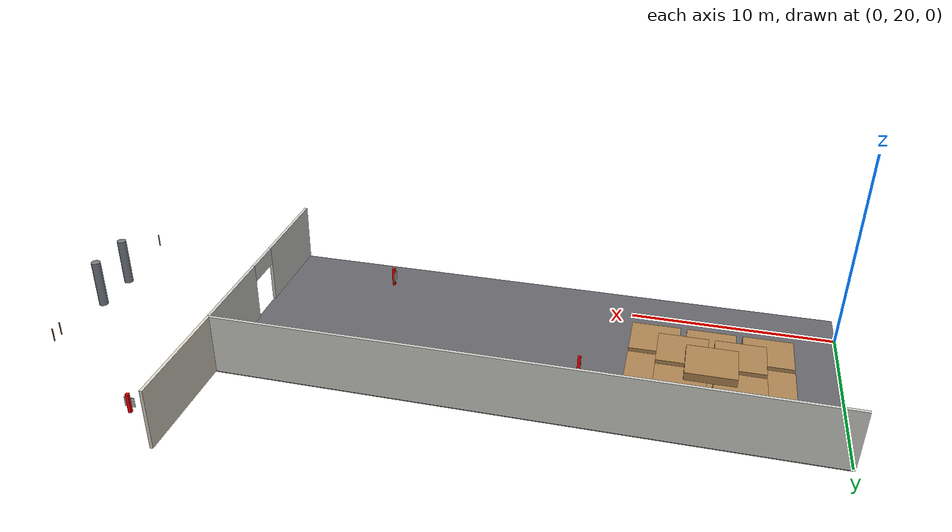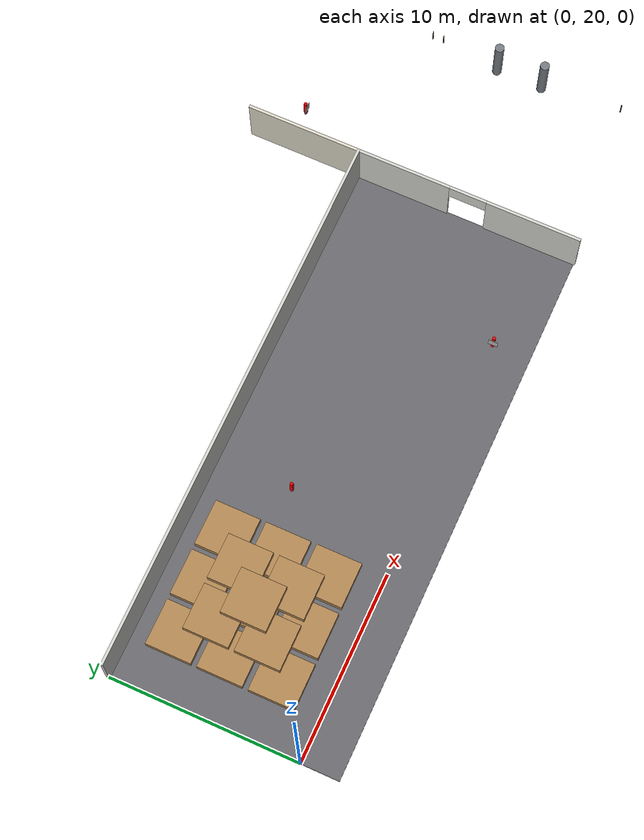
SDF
<sdf version="1.6">
 <world name="warehouse_world">
  <model name="wall_warehouse_north">
   <static>true</static>
   <pose>14.4000 30.0000 1.5000 0.0000 0.0000 0.0000</pose>
   <link name="link">
    <inertial>
     <mass>50.0</mass>
     <inertia><ixx>0.1</ixx><ixy>0</ixy><ixz>0</ixz><iyy>0.1</iyy><iyz>0</iyz><izz>0.1</izz></inertia>
    </inertial>
    <collision name="collision">
     <geometry><box><size>28.9500 0.1500 3.0000</size></box></geometry>
     <surface><friction><ode><mu>0.8</mu><mu2>0.8</mu2></ode></friction></surface>
    </collision>
    <visual name="visual">
     <geometry><box><size>28.9500 0.1500 3.0000</size></box></geometry>
     <material>
      <ambient>0.820 0.820 0.800 1.00</ambient>
      <diffuse>0.820 0.820 0.800 1.00</diffuse>
      <specular>0.15 0.15 0.15 1</specular>
      <emissive>0 0 0 1</emissive>
     </material>
    </visual>
   </link>
  </model>
  <model name="wall_office_west_upper">
   <static>true</static>
   <pose>28.8000 33.0000 1.5000 0.0000 0.0000 0.0000</pose>
   <link name="link">
    <inertial>
     <mass>50.0</mass>
     <inertia><ixx>0.1</ixx><ixy>0</ixy><ixz>0</ixz><iyy>0.1</iyy><iyz>0</iyz><izz>0.1</izz></inertia>
    </inertial>
    <collision name="collision">
     <geometry><box><size>0.1500 6.1500 3.0000</size></box></geometry>
     <surface><friction><ode><mu>0.8</mu><mu2>0.8</mu2></ode></friction></surface>
    </collision>
    <visual name="visual">
     <geometry><box><size>0.1500 6.1500 3.0000</size></box></geometry>
     <material>
      <ambient>0.860 0.840 0.780 1.00</ambient>
      <diffuse>0.860 0.840 0.780 1.00</diffuse>
      <specular>0.15 0.15 0.15 1</specular>
      <emissive>0 0 0 1</emissive>
     </material>
    </visual>
   </link>
  </model>
  <model name="door_warehouse_office_jamb_a">
   <static>true</static>
   <pose>28.8000 20.4625 1.5000 0.0000 0.0000 0.0000</pose>
   <link name="link">
    <inertial>
     <mass>50.0</mass>
     <inertia><ixx>0.1</ixx><ixy>0</ixy><ixz>0</ixz><iyy>0.1</iyy><iyz>0</iyz><izz>0.1</izz></inertia>
    </inertial>
    <collision name="collision">
     <geometry><box><size>0.1500 5.0750 3.0000</size></box></geometry>
     <surface><friction><ode><mu>0.8</mu><mu2>0.8</mu2></ode></friction></surface>
    </collision>
    <visual name="visual">
     <geometry><box><size>0.1500 5.0750 3.0000</size></box></geometry>
     <material>
      <ambient>0.820 0.820 0.800 1.00</ambient>
      <diffuse>0.820 0.820 0.800 1.00</diffuse>
      <specular>0.15 0.15 0.15 1</specular>
      <emissive>0 0 0 1</emissive>
     </material>
    </visual>
   </link>
  </model>
  <model name="door_warehouse_office_jamb_b">
   <static>true</static>
   <pose>28.8000 27.5375 1.5000 0.0000 0.0000 0.0000</pose>
   <link name="link">
    <inertial>
     <mass>50.0</mass>
     <inertia><ixx>0.1</ixx><ixy>0</ixy><ixz>0</ixz><iyy>0.1</iyy><iyz>0</iyz><izz>0.1</izz></inertia>
    </inertial>
    <collision name="collision">
     <geometry><box><size>0.1500 5.0750 3.0000</size></box></geometry>
     <surface><friction><ode><mu>0.8</mu><mu2>0.8</mu2></ode></friction></surface>
    </collision>
    <visual name="visual">
     <geometry><box><size>0.1500 5.0750 3.0000</size></box></geometry>
     <material>
      <ambient>0.820 0.820 0.800 1.00</ambient>
      <diffuse>0.820 0.820 0.800 1.00</diffuse>
      <specular>0.15 0.15 0.15 1</specular>
      <emissive>0 0 0 1</emissive>
     </material>
    </visual>
   </link>
  </model>
  <model name="door_warehouse_office_header">
   <static>true</static>
   <pose>28.8000 24.0000 2.5500 0.0000 0.0000 0.0000</pose>
   <link name="link">
    <inertial>
     <mass>10.0</mass>
     <inertia><ixx>0.1</ixx><ixy>0</ixy><ixz>0</ixz><iyy>0.1</iyy><iyz>0</iyz><izz>0.1</izz></inertia>
    </inertial>
    <collision name="collision">
     <geometry><box><size>0.1500 2.0000 0.9000</size></box></geometry>
     <surface><friction><ode><mu>0.8</mu><mu2>0.8</mu2></ode></friction></surface>
    </collision>
    <visual name="visual">
     <geometry><box><size>0.1500 2.0000 0.9000</size></box></geometry>
     <material>
      <ambient>0.820 0.820 0.800 1.00</ambient>
      <diffuse>0.820 0.820 0.800 1.00</diffuse>
      <specular>0.15 0.15 0.15 1</specular>
      <emissive>0 0 0 1</emissive>
     </material>
    </visual>
   </link>
  </model>
  <model name="floor_warehouse_upper">
   <static>true</static>
   <pose>14.4000 24.0000 -0.0500 0.0000 0.0000 0.0000</pose>
   <link name="link">
    <inertial>
     <mass>100.0</mass>
     <inertia><ixx>0.1</ixx><ixy>0</ixy><ixz>0</ixz><iyy>0.1</iyy><iyz>0</iyz><izz>0.1</izz></inertia>
    </inertial>
    <collision name="collision">
     <geometry><box><size>28.8000 12.0000 0.1000</size></box></geometry>
     <surface><friction><ode><mu>0.8</mu><mu2>0.8</mu2></ode></friction></surface>
    </collision>
    <visual name="visual">
     <geometry><box><size>28.8000 12.0000 0.1000</size></box></geometry>
     <material>
      <ambient>0.400 0.400 0.420 1.00</ambient>
      <diffuse>0.400 0.400 0.420 1.00</diffuse>
      <specular>0.15 0.15 0.15 1</specular>
      <emissive>0 0 0 1</emissive>
     </material>
    </visual>
   </link>
  </model>
  <model name="loading_area_pad">
   <static>true</static>
   <pose>6.0000 25.2000 0.0010 0.0000 0.0000 0.0000</pose>
   <link name="link">
    <inertial>
     <mass>5.0</mass>
     <inertia><ixx>0.1</ixx><ixy>0</ixy><ixz>0</ixz><iyy>0.1</iyy><iyz>0</iyz><izz>0.1</izz></inertia>
    </inertial>
    <collision name="collision">
     <geometry><plane><normal>0 0 1</normal><size>9.6000 9.6000</size></plane></geometry>
     <surface><friction><ode><mu>0.8</mu><mu2>0.8</mu2></ode></friction></surface>
    </collision>
    <visual name="visual">
     <geometry><plane><normal>0 0 1</normal><size>9.6000 9.6000</size></plane></geometry>
     <material>
      <ambient>0.850 0.700 0.100 1.00</ambient>
      <diffuse>0.850 0.700 0.100 1.00</diffuse>
      <specular>0.15 0.15 0.15 1</specular>
      <emissive>0 0 0 1</emissive>
     </material>
    </visual>
   </link>
  </model>
  <model name="loading_box_base_1">
   <static>true</static>
   <pose>3.3000 22.5000 0.2000 0.0000 0.0000 0.0000</pose>
   <link name="link">
    <inertial>
     <mass>8.0</mass>
     <inertia><ixx>0.1</ixx><ixy>0</ixy><ixz>0</ixz><iyy>0.1</iyy><iyz>0</iyz><izz>0.1</izz></inertia>
    </inertial>
    <collision name="collision">
     <geometry><box><size>2.4000 2.4000 0.4000</size></box></geometry>
     <surface><friction><ode><mu>0.8</mu><mu2>0.8</mu2></ode></friction></surface>
    </collision>
    <visual name="visual">
     <geometry><box><size>2.4000 2.4000 0.4000</size></box></geometry>
     <material>
      <ambient>0.680 0.520 0.320 1.00</ambient>
      <diffuse>0.680 0.520 0.320 1.00</diffuse>
      <specular>0.15 0.15 0.15 1</specular>
      <emissive>0 0 0 1</emissive>
     </material>
    </visual>
   </link>
  </model>
  <model name="loading_box_base_2">
   <static>true</static>
   <pose>6.0000 22.5000 0.2000 0.0000 0.0000 0.0000</pose>
   <link name="link">
    <inertial>
     <mass>8.0</mass>
     <inertia><ixx>0.1</ixx><ixy>0</ixy><ixz>0</ixz><iyy>0.1</iyy><iyz>0</iyz><izz>0.1</izz></inertia>
    </inertial>
    <collision name="collision">
     <geometry><box><size>2.4000 2.4000 0.4000</size></box></geometry>
     <surface><friction><ode><mu>0.8</mu><mu2>0.8</mu2></ode></friction></surface>
    </collision>
    <visual name="visual">
     <geometry><box><size>2.4000 2.4000 0.4000</size></box></geometry>
     <material>
      <ambient>0.680 0.520 0.320 1.00</ambient>
      <diffuse>0.680 0.520 0.320 1.00</diffuse>
      <specular>0.15 0.15 0.15 1</specular>
      <emissive>0 0 0 1</emissive>
     </material>
    </visual>
   </link>
  </model>
  <model name="loading_box_base_3">
   <static>true</static>
   <pose>8.7000 22.5000 0.2000 0.0000 0.0000 0.0000</pose>
   <link name="link">
    <inertial>
     <mass>8.0</mass>
     <inertia><ixx>0.1</ixx><ixy>0</ixy><ixz>0</ixz><iyy>0.1</iyy><iyz>0</iyz><izz>0.1</izz></inertia>
    </inertial>
    <collision name="collision">
     <geometry><box><size>2.4000 2.4000 0.4000</size></box></geometry>
     <surface><friction><ode><mu>0.8</mu><mu2>0.8</mu2></ode></friction></surface>
    </collision>
    <visual name="visual">
     <geometry><box><size>2.4000 2.4000 0.4000</size></box></geometry>
     <material>
      <ambient>0.680 0.520 0.320 1.00</ambient>
      <diffuse>0.680 0.520 0.320 1.00</diffuse>
      <specular>0.15 0.15 0.15 1</specular>
      <emissive>0 0 0 1</emissive>
     </material>
    </visual>
   </link>
  </model>
  <model name="loading_box_base_4">
   <static>true</static>
   <pose>3.3000 25.2000 0.2000 0.0000 0.0000 0.0000</pose>
   <link name="link">
    <inertial>
     <mass>8.0</mass>
     <inertia><ixx>0.1</ixx><ixy>0</ixy><ixz>0</ixz><iyy>0.1</iyy><iyz>0</iyz><izz>0.1</izz></inertia>
    </inertial>
    <collision name="collision">
     <geometry><box><size>2.4000 2.4000 0.4000</size></box></geometry>
     <surface><friction><ode><mu>0.8</mu><mu2>0.8</mu2></ode></friction></surface>
    </collision>
    <visual name="visual">
     <geometry><box><size>2.4000 2.4000 0.4000</size></box></geometry>
     <material>
      <ambient>0.680 0.520 0.320 1.00</ambient>
      <diffuse>0.680 0.520 0.320 1.00</diffuse>
      <specular>0.15 0.15 0.15 1</specular>
      <emissive>0 0 0 1</emissive>
     </material>
    </visual>
   </link>
  </model>
  <model name="loading_box_base_5">
   <static>true</static>
   <pose>6.0000 25.2000 0.2000 0.0000 0.0000 0.0000</pose>
   <link name="link">
    <inertial>
     <mass>8.0</mass>
     <inertia><ixx>0.1</ixx><ixy>0</ixy><ixz>0</ixz><iyy>0.1</iyy><iyz>0</iyz><izz>0.1</izz></inertia>
    </inertial>
    <collision name="collision">
     <geometry><box><size>2.4000 2.4000 0.4000</size></box></geometry>
     <surface><friction><ode><mu>0.8</mu><mu2>0.8</mu2></ode></friction></surface>
    </collision>
    <visual name="visual">
     <geometry><box><size>2.4000 2.4000 0.4000</size></box></geometry>
     <material>
      <ambient>0.680 0.520 0.320 1.00</ambient>
      <diffuse>0.680 0.520 0.320 1.00</diffuse>
      <specular>0.15 0.15 0.15 1</specular>
      <emissive>0 0 0 1</emissive>
     </material>
    </visual>
   </link>
  </model>
  <model name="loading_box_base_6">
   <static>true</static>
   <pose>8.7000 25.2000 0.2000 0.0000 0.0000 0.0000</pose>
   <link name="link">
    <inertial>
     <mass>8.0</mass>
     <inertia><ixx>0.1</ixx><ixy>0</ixy><ixz>0</ixz><iyy>0.1</iyy><iyz>0</iyz><izz>0.1</izz></inertia>
    </inertial>
    <collision name="collision">
     <geometry><box><size>2.4000 2.4000 0.4000</size></box></geometry>
     <surface><friction><ode><mu>0.8</mu><mu2>0.8</mu2></ode></friction></surface>
    </collision>
    <visual name="visual">
     <geometry><box><size>2.4000 2.4000 0.4000</size></box></geometry>
     <material>
      <ambient>0.680 0.520 0.320 1.00</ambient>
      <diffuse>0.680 0.520 0.320 1.00</diffuse>
      <specular>0.15 0.15 0.15 1</specular>
      <emissive>0 0 0 1</emissive>
     </material>
    </visual>
   </link>
  </model>
  <model name="loading_box_base_7">
   <static>true</static>
   <pose>3.3000 27.9000 0.2000 0.0000 0.0000 0.0000</pose>
   <link name="link">
    <inertial>
     <mass>8.0</mass>
     <inertia><ixx>0.1</ixx><ixy>0</ixy><ixz>0</ixz><iyy>0.1</iyy><iyz>0</iyz><izz>0.1</izz></inertia>
    </inertial>
    <collision name="collision">
     <geometry><box><size>2.4000 2.4000 0.4000</size></box></geometry>
     <surface><friction><ode><mu>0.8</mu><mu2>0.8</mu2></ode></friction></surface>
    </collision>
    <visual name="visual">
     <geometry><box><size>2.4000 2.4000 0.4000</size></box></geometry>
     <material>
      <ambient>0.680 0.520 0.320 1.00</ambient>
      <diffuse>0.680 0.520 0.320 1.00</diffuse>
      <specular>0.15 0.15 0.15 1</specular>
      <emissive>0 0 0 1</emissive>
     </material>
    </visual>
   </link>
  </model>
  <model name="loading_box_base_8">
   <static>true</static>
   <pose>6.0000 27.9000 0.2000 0.0000 0.0000 0.0000</pose>
   <link name="link">
    <inertial>
     <mass>8.0</mass>
     <inertia><ixx>0.1</ixx><ixy>0</ixy><ixz>0</ixz><iyy>0.1</iyy><iyz>0</iyz><izz>0.1</izz></inertia>
    </inertial>
    <collision name="collision">
     <geometry><box><size>2.4000 2.4000 0.4000</size></box></geometry>
     <surface><friction><ode><mu>0.8</mu><mu2>0.8</mu2></ode></friction></surface>
    </collision>
    <visual name="visual">
     <geometry><box><size>2.4000 2.4000 0.4000</size></box></geometry>
     <material>
      <ambient>0.680 0.520 0.320 1.00</ambient>
      <diffuse>0.680 0.520 0.320 1.00</diffuse>
      <specular>0.15 0.15 0.15 1</specular>
      <emissive>0 0 0 1</emissive>
     </material>
    </visual>
   </link>
  </model>
  <model name="loading_box_base_9">
   <static>true</static>
   <pose>8.7000 27.9000 0.2000 0.0000 0.0000 0.0000</pose>
   <link name="link">
    <inertial>
     <mass>8.0</mass>
     <inertia><ixx>0.1</ixx><ixy>0</ixy><ixz>0</ixz><iyy>0.1</iyy><iyz>0</iyz><izz>0.1</izz></inertia>
    </inertial>
    <collision name="collision">
     <geometry><box><size>2.4000 2.4000 0.4000</size></box></geometry>
     <surface><friction><ode><mu>0.8</mu><mu2>0.8</mu2></ode></friction></surface>
    </collision>
    <visual name="visual">
     <geometry><box><size>2.4000 2.4000 0.4000</size></box></geometry>
     <material>
      <ambient>0.680 0.520 0.320 1.00</ambient>
      <diffuse>0.680 0.520 0.320 1.00</diffuse>
      <specular>0.15 0.15 0.15 1</specular>
      <emissive>0 0 0 1</emissive>
     </material>
    </visual>
   </link>
  </model>
  <model name="loading_box_mid_1">
   <static>true</static>
   <pose>4.6500 23.8500 0.6000 0.0000 0.0000 0.0000</pose>
   <link name="link">
    <inertial>
     <mass>8.0</mass>
     <inertia><ixx>0.1</ixx><ixy>0</ixy><ixz>0</ixz><iyy>0.1</iyy><iyz>0</iyz><izz>0.1</izz></inertia>
    </inertial>
    <collision name="collision">
     <geometry><box><size>2.4000 2.4000 0.4000</size></box></geometry>
     <surface><friction><ode><mu>0.8</mu><mu2>0.8</mu2></ode></friction></surface>
    </collision>
    <visual name="visual">
     <geometry><box><size>2.4000 2.4000 0.4000</size></box></geometry>
     <material>
      <ambient>0.680 0.520 0.320 1.00</ambient>
      <diffuse>0.680 0.520 0.320 1.00</diffuse>
      <specular>0.15 0.15 0.15 1</specular>
      <emissive>0 0 0 1</emissive>
     </material>
    </visual>
   </link>
  </model>
  <model name="loading_box_mid_2">
   <static>true</static>
   <pose>7.3500 23.8500 0.6000 0.0000 0.0000 0.0000</pose>
   <link name="link">
    <inertial>
     <mass>8.0</mass>
     <inertia><ixx>0.1</ixx><ixy>0</ixy><ixz>0</ixz><iyy>0.1</iyy><iyz>0</iyz><izz>0.1</izz></inertia>
    </inertial>
    <collision name="collision">
     <geometry><box><size>2.4000 2.4000 0.4000</size></box></geometry>
     <surface><friction><ode><mu>0.8</mu><mu2>0.8</mu2></ode></friction></surface>
    </collision>
    <visual name="visual">
     <geometry><box><size>2.4000 2.4000 0.4000</size></box></geometry>
     <material>
      <ambient>0.680 0.520 0.320 1.00</ambient>
      <diffuse>0.680 0.520 0.320 1.00</diffuse>
      <specular>0.15 0.15 0.15 1</specular>
      <emissive>0 0 0 1</emissive>
     </material>
    </visual>
   </link>
  </model>
  <model name="loading_box_mid_3">
   <static>true</static>
   <pose>4.6500 26.5500 0.6000 0.0000 0.0000 0.0000</pose>
   <link name="link">
    <inertial>
     <mass>8.0</mass>
     <inertia><ixx>0.1</ixx><ixy>0</ixy><ixz>0</ixz><iyy>0.1</iyy><iyz>0</iyz><izz>0.1</izz></inertia>
    </inertial>
    <collision name="collision">
     <geometry><box><size>2.4000 2.4000 0.4000</size></box></geometry>
     <surface><friction><ode><mu>0.8</mu><mu2>0.8</mu2></ode></friction></surface>
    </collision>
    <visual name="visual">
     <geometry><box><size>2.4000 2.4000 0.4000</size></box></geometry>
     <material>
      <ambient>0.680 0.520 0.320 1.00</ambient>
      <diffuse>0.680 0.520 0.320 1.00</diffuse>
      <specular>0.15 0.15 0.15 1</specular>
      <emissive>0 0 0 1</emissive>
     </material>
    </visual>
   </link>
  </model>
  <model name="loading_box_mid_4">
   <static>true</static>
   <pose>7.3500 26.5500 0.6000 0.0000 0.0000 0.0000</pose>
   <link name="link">
    <inertial>
     <mass>8.0</mass>
     <inertia><ixx>0.1</ixx><ixy>0</ixy><ixz>0</ixz><iyy>0.1</iyy><iyz>0</iyz><izz>0.1</izz></inertia>
    </inertial>
    <collision name="collision">
     <geometry><box><size>2.4000 2.4000 0.4000</size></box></geometry>
     <surface><friction><ode><mu>0.8</mu><mu2>0.8</mu2></ode></friction></surface>
    </collision>
    <visual name="visual">
     <geometry><box><size>2.4000 2.4000 0.4000</size></box></geometry>
     <material>
      <ambient>0.680 0.520 0.320 1.00</ambient>
      <diffuse>0.680 0.520 0.320 1.00</diffuse>
      <specular>0.15 0.15 0.15 1</specular>
      <emissive>0 0 0 1</emissive>
     </material>
    </visual>
   </link>
  </model>
  <model name="loading_box_top_1">
   <static>true</static>
   <pose>6.0000 25.2000 1.0000 0.0000 0.0000 0.0000</pose>
   <link name="link">
    <inertial>
     <mass>8.0</mass>
     <inertia><ixx>0.1</ixx><ixy>0</ixy><ixz>0</ixz><iyy>0.1</iyy><iyz>0</iyz><izz>0.1</izz></inertia>
    </inertial>
    <collision name="collision">
     <geometry><box><size>2.4000 2.4000 0.4000</size></box></geometry>
     <surface><friction><ode><mu>0.8</mu><mu2>0.8</mu2></ode></friction></surface>
    </collision>
    <visual name="visual">
     <geometry><box><size>2.4000 2.4000 0.4000</size></box></geometry>
     <material>
      <ambient>0.680 0.520 0.320 1.00</ambient>
      <diffuse>0.680 0.520 0.320 1.00</diffuse>
      <specular>0.15 0.15 0.15 1</specular>
      <emissive>0 0 0 1</emissive>
     </material>
    </visual>
   </link>
  </model>
  <model name="table_3_leg3">
   <static>true</static>
   <pose>37.7500 29.7000 0.3500 0.0000 0.0000 0.0000</pose>
   <link name="link">
    <inertial>
     <mass>1.0</mass>
     <inertia><ixx>0.01</ixx><ixy>0</ixy><ixz>0</ixz><iyy>0.01</iyy><iyz>0</iyz><izz>0.01</izz></inertia>
    </inertial>
    <collision name="collision">
     <geometry><cylinder><radius>0.0300</radius><length>0.7000</length></cylinder></geometry>
    </collision>
    <visual name="visual">
     <geometry><cylinder><radius>0.0300</radius><length>0.7000</length></cylinder></geometry>
     <material>
      <ambient>0.250 0.170 0.100 1.00</ambient>
      <diffuse>0.250 0.170 0.100 1.00</diffuse>
      <specular>0.2 0.2 0.2 1</specular>
      <emissive>0 0 0 1</emissive>
     </material>
    </visual>
   </link>
  </model>
  <model name="table_3_leg4">
   <static>true</static>
   <pose>37.7500 29.1000 0.3500 0.0000 0.0000 0.0000</pose>
   <link name="link">
    <inertial>
     <mass>1.0</mass>
     <inertia><ixx>0.01</ixx><ixy>0</ixy><ixz>0</ixz><iyy>0.01</iyy><iyz>0</iyz><izz>0.01</izz></inertia>
    </inertial>
    <collision name="collision">
     <geometry><cylinder><radius>0.0300</radius><length>0.7000</length></cylinder></geometry>
    </collision>
    <visual name="visual">
     <geometry><cylinder><radius>0.0300</radius><length>0.7000</length></cylinder></geometry>
     <material>
      <ambient>0.250 0.170 0.100 1.00</ambient>
      <diffuse>0.250 0.170 0.100 1.00</diffuse>
      <specular>0.2 0.2 0.2 1</specular>
      <emissive>0 0 0 1</emissive>
     </material>
    </visual>
   </link>
  </model>
  <model name="table_4_leg4">
   <static>true</static>
   <pose>37.8000 19.0500 0.3500 0.0000 0.0000 0.0000</pose>
   <link name="link">
    <inertial>
     <mass>1.0</mass>
     <inertia><ixx>0.01</ixx><ixy>0</ixy><ixz>0</ixz><iyy>0.01</iyy><iyz>0</iyz><izz>0.01</izz></inertia>
    </inertial>
    <collision name="collision">
     <geometry><cylinder><radius>0.0300</radius><length>0.7000</length></cylinder></geometry>
    </collision>
    <visual name="visual">
     <geometry><cylinder><radius>0.0300</radius><length>0.7000</length></cylinder></geometry>
     <material>
      <ambient>0.250 0.170 0.100 1.00</ambient>
      <diffuse>0.250 0.170 0.100 1.00</diffuse>
      <specular>0.2 0.2 0.2 1</specular>
      <emissive>0 0 0 1</emissive>
     </material>
    </visual>
   </link>
  </model>
  <model name="rack_office_post3">
   <static>true</static>
   <pose>37.3400 25.8600 1.2500 0.0000 0.0000 0.0000</pose>
   <link name="link">
    <inertial>
     <mass>4.0</mass>
     <inertia><ixx>0.01</ixx><ixy>0</ixy><ixz>0</ixz><iyy>0.01</iyy><iyz>0</iyz><izz>0.01</izz></inertia>
    </inertial>
    <collision name="collision">
     <geometry><cylinder><radius>0.2400</radius><length>2.5000</length></cylinder></geometry>
    </collision>
    <visual name="visual">
     <geometry><cylinder><radius>0.2400</radius><length>2.5000</length></cylinder></geometry>
     <material>
      <ambient>0.450 0.470 0.500 1.00</ambient>
      <diffuse>0.450 0.470 0.500 1.00</diffuse>
      <specular>0.2 0.2 0.2 1</specular>
      <emissive>0 0 0 1</emissive>
     </material>
    </visual>
   </link>
  </model>
  <model name="rack_office_post4">
   <static>true</static>
   <pose>37.3400 23.3400 1.2500 0.0000 0.0000 0.0000</pose>
   <link name="link">
    <inertial>
     <mass>4.0</mass>
     <inertia><ixx>0.01</ixx><ixy>0</ixy><ixz>0</ixz><iyy>0.01</iyy><iyz>0</iyz><izz>0.01</izz></inertia>
    </inertial>
    <collision name="collision">
     <geometry><cylinder><radius>0.2400</radius><length>2.5000</length></cylinder></geometry>
    </collision>
    <visual name="visual">
     <geometry><cylinder><radius>0.2400</radius><length>2.5000</length></cylinder></geometry>
     <material>
      <ambient>0.450 0.470 0.500 1.00</ambient>
      <diffuse>0.450 0.470 0.500 1.00</diffuse>
      <specular>0.2 0.2 0.2 1</specular>
      <emissive>0 0 0 1</emissive>
     </material>
    </visual>
   </link>
  </model>
  <model name="marker_stand_3">
   <static>true</static>
   <pose>23 20 0.5 0 0 0</pose>
   <link name="link">
    <collision name="collision"><geometry><box><size>0.15 0.15 1</size></box></geometry></collision>
    <visual name="visual">
     <geometry><box><size>0.15 0.15 1</size></box></geometry>
     <material><ambient>1 0 0 1</ambient><diffuse>1 0 0 1</diffuse></material>
    </visual>
   </link>
  </model>
  <model name="marker_stand_9">
   <static>true</static>
   <pose>12 26 0.5 0 0 0</pose>
   <link name="link">
    <collision name="collision"><geometry><box><size>0.15 0.15 1</size></box></geometry></collision>
    <visual name="visual">
     <geometry><box><size>0.15 0.15 1</size></box></geometry>
     <material><ambient>1 0 0 1</ambient><diffuse>1 0 0 1</diffuse></material>
    </visual>
   </link>
  </model>
  <model name="marker_stand_11">
   <static>true</static>
   <pose>31 34 0.5 0 0 0</pose>
   <link name="link">
    <collision name="collision"><geometry><box><size>0.15 0.15 1</size></box></geometry></collision>
    <visual name="visual">
     <geometry><box><size>0.15 0.15 1</size></box></geometry>
     <material><ambient>1 0 0 1</ambient><diffuse>1 0 0 1</diffuse></material>
    </visual>
   </link>
  </model>
  <include><uri>model://aruco_marker_2</uri><name>aruco_2</name><pose>22.925 20 0.5 0 0 1.5708</pose></include>
  <include><uri>model://aruco_marker_10</uri><name>aruco_10</name><pose>31 33.925 0.5 0 0 0</pose></include>
 </world>
</sdf>
